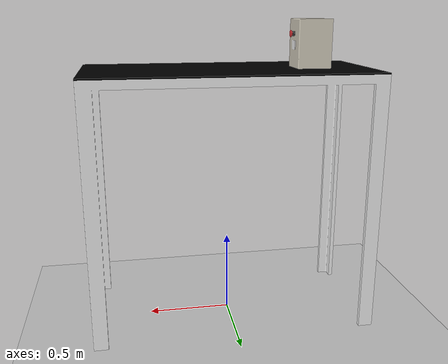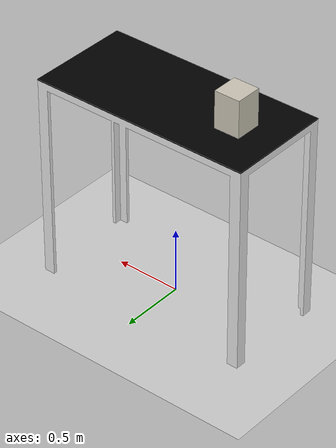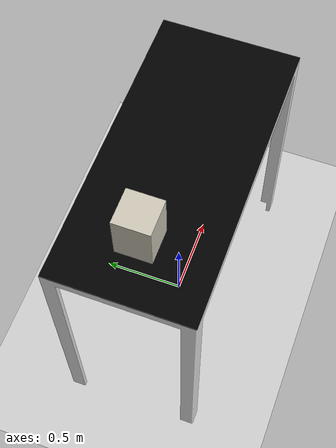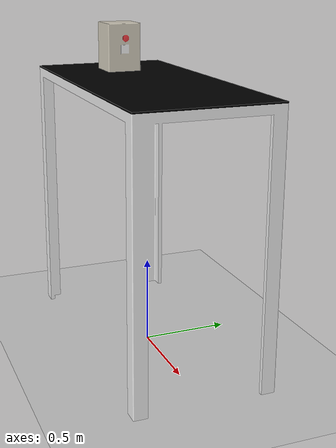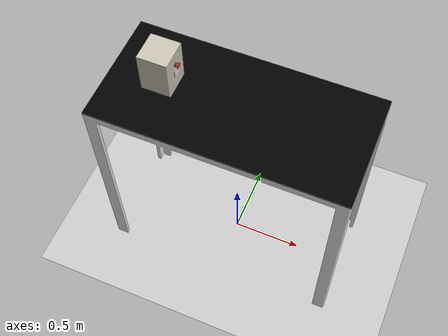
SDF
<?xml version="1.0" ?>
<sdf version="1.5">
  <world name="default">

    <include>
      <uri>model://sun</uri>
    </include>

    <include>
      <uri>model://ground_plane</uri>
    </include>

    <include>
      <uri>model://table_challenger</uri>
      <pose> 0 0 1.5 0 0 0 </pose>
    </include>

    <include>
      <uri>model://button_challenger</uri>
      <pose> -0.5 0 1.7 0 0 1.57 </pose>
    </include>

  </world>
</sdf>

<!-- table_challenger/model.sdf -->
<sdf version='1.6'>
  <model name="table_challenger">
    <pose>0 0 0 0 0 0</pose>
    <static>1</static>
    <link name="workbench">
      <visual name="visual">
        <geometry>
          <mesh><uri>file://table_challenger/mesh/table.dae</uri></mesh>
        </geometry>
      </visual>
      <collision name='collision'>
        <geometry>
          <mesh><uri>file://table_challenger/mesh/table.dae</uri></mesh>
        </geometry>
        <surface>
          <bounce/>
          <friction>
            <ode/>
          </friction>
          <contact>
            <ode/>
          </contact>
        </surface>
      </collision>
      <gravity>1</gravity>
    </link>
  </model>
</sdf>

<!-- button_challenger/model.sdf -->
<sdf version='1.6'>
  <model name="button_challenger">
    <pose>0 0 0 0 0 0</pose>
    <static>1</static>
    <link name="workbench1">
      <visual name="visual">
        <geometry>
          <mesh><uri>file://button_challenger/mesh/button.dae</uri></mesh>
        </geometry>
      </visual>
      <collision name='collision'>
        <geometry>
          <mesh><uri>file://button_challenger/mesh/button.dae</uri></mesh>
        </geometry>
        <surface>
          <bounce/>
          <friction>
            <ode/>
          </friction>
          <contact>
            <ode/>
          </contact>
        </surface>
      </collision>
      <gravity>1</gravity>
    </link>
  </model>
</sdf>
